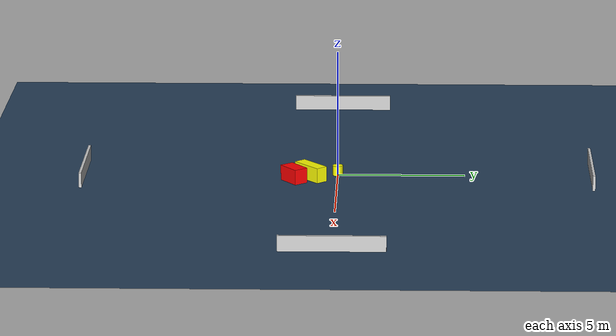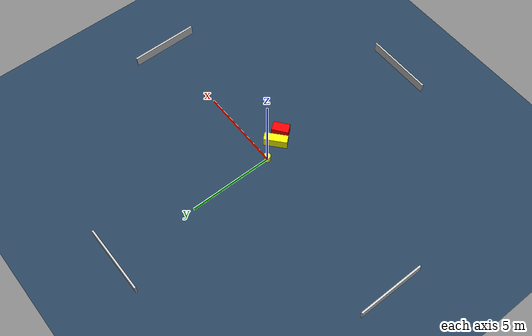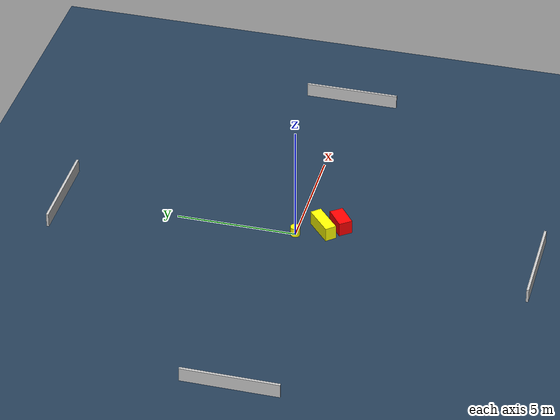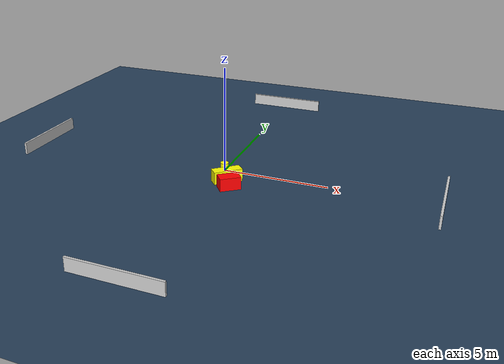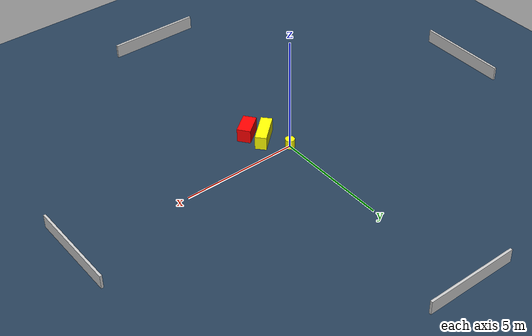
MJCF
<?xml version="1.0" ?>
<mujoco model="generated_environment">
  <option timestep="0.01" integrator="RK4" cone="elliptic"/>
  <default>
    <geom density="1"/>
  </default>
  <asset>
    <texture builtin="gradient" height="3072" name="skybox" rgb1="0.3 0.5 0.7" rgb2="0 0 0" type="skybox" width="512"/>
    <texture builtin="checker" height="300" name="groundplane" rgb1="0.2 0.3 0.4" rgb2="0.1 0.2 0.3" type="2d" width="300"/>
    <material name="groundplane" reflectance="0.2" texrepeat="5 5" texture="groundplane"/>
  </asset>
  <worldbody>
    <light dir="0 0 -1" directional="true" pos="0 0 1.5"/>
    <geom condim="3" friction="0.5 0.005 0.001" material="groundplane" name="floor" pos="0 0 0" size="0 0 0.05" type="plane"/>
    <body name="walls">
      <geom name="wall_1" condim="4" pos="-10.0 0.0 0.3" rgba="0.800000011920929 0.800000011920929 0.800000011920929 1.0" size="0.05 2.0 0.3" type="box"/>
      <geom name="wall_2" condim="4" pos="10.0 0.0 0.3" rgba="0.800000011920929 0.800000011920929 0.800000011920929 1.0" size="0.05 2.0 0.3" type="box"/>
      <geom name="wall_3" condim="4" pos="0.0 -10.0 0.3" rgba="0.800000011920929 0.800000011920929 0.800000011920929 1.0" size="2.0 0.05 0.3" type="box"/>
      <geom name="wall_4" condim="4" pos="0.0 10.0 0.3" rgba="0.800000011920929 0.800000011920929 0.800000011920929 1.0" size="2.0 0.05 0.3" type="box"/>
    </body>
    <body name="robot">
      <joint name="joint_x" type="slide" pos="0 0 0" axis="1 0 0"/>
      <joint name="joint_y" type="slide" pos="0 0 0" axis="0 1 0"/>
      <geom name="robot" type="cylinder" pos="0.0 0.0 0.2" size="0.2 0.2 0.0" mass="5.0" friction="1.0 0.005 0.0001" condim="4" rgba="1.0 1.0 0.0 1.0"/>
    </body>
    <body name="obstacle_1_movable">
      <geom name="obstacle_1_movable" condim="4" pos="0.5337049715366455 -1.0453370652232061 0.3" euler="0 0 221.34101516540662" friction="0.0 0.005 0.001" rgba="1.0 1.0 0.0 1.0" size="0.676040882083144 0.24058742127047555 0.3" type="box" mass="0.1"/>
      <joint type="free"/>
    </body>
    <body name="obstacle_2_static">
      <geom name="obstacle_2_static" condim="4" pos="0.900444319379037 -1.701652738332667 0.3" euler="0 0 217.2430201554329" friction="0.0 0.005 0.001" rgba="1.0 0.0 0.0 1.0" size="0.48508667204910244 0.2858695745594434 0.3" type="box"/>
    </body>
  </worldbody>
  <actuator>
    <motor name="actuator_x" joint="joint_x" gear="1" ctrlrange="-1 1"/>
    <motor name="actuator_y" joint="joint_y" gear="1" ctrlrange="-1 1"/>
  </actuator>
</mujoco>
